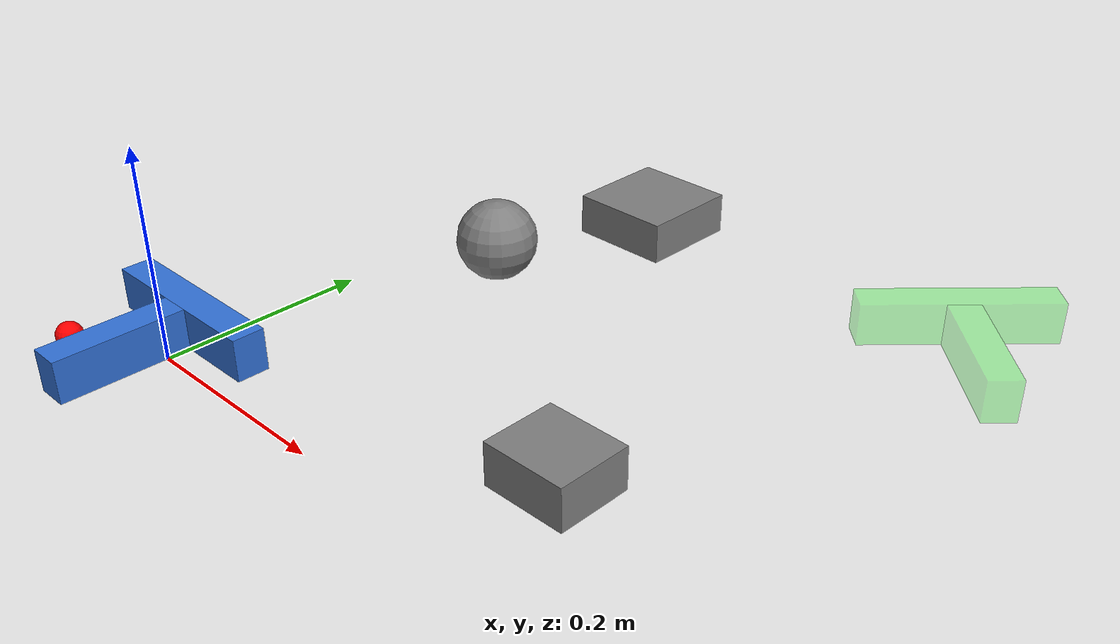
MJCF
<mujoco model="pusht_clutter">
  <option timestep="0.01" gravity="0 0 -9.81" iterations="20" ls_iterations="20" integrator="implicitfast"/>

  <default>
    <velocity ctrllimited="true" ctrlrange="-2.0 2.0" kv="100" forcerange="-200 200"/>
    <geom friction="0.5 0.005 0.0001" solref="0.004 1" solimp="0.9 0.95 0.001"/>
    <default class="goal">
      <geom conaffinity="0" contype="0" rgba="0 1 0 0.3"/>
    </default>
    <default class="object_plan">
      <geom conaffinity="0" contype="0" rgba="0 0.30 0.95 0.25"/>
    </default>
    <default class="obstacle">
      <geom conaffinity="1" contype="1" rgba="0.5 0.5 0.5 1"/>
    </default>
  </default>

  <worldbody>
    <body name="goal" mocap="true" pos="0.50 0.48 0.03" quat="0.92388 0 0 0.38268">
      <geom class="goal" name="goal_crossbar" type="box" size="0.090 0.015 0.020" pos="0.0 0.030 0.0"/>
      <geom class="goal" name="goal_stem" type="box" size="0.015 0.060 0.020" pos="0.0 -0.045 0.0"/>
    </body>

    <body name="object_plan" mocap="true" pos="0.0 0.0 0.03" quat="1 0 0 0">
      <geom class="object_plan" name="object_plan_crossbar" type="box" size="0.090 0.015 0.020" pos="0.0 0.030 0.0"/>
      <geom class="object_plan" name="object_plan_stem" type="box" size="0.015 0.060 0.020" pos="0.0 -0.045 0.0"/>
    </body>

    <body name="block" pos="0.0 0.0 0.03">
      <joint name="T_x" type="slide" axis="1 0 0" frictionloss="7.848" damping="0.0"/>
      <joint name="T_y" type="slide" axis="0 1 0" frictionloss="7.848" damping="0.0"/>
      <joint name="T_z" type="hinge" axis="0 0 1" frictionloss="0.47088" damping="0.0"/>
      <geom name="block_crossbar" type="box" size="0.090 0.015 0.020" pos="0.0 0.030 0.0" mass="1.0" rgba="0.2 0.45 0.85 1"/>
      <geom name="block_stem" type="box" size="0.015 0.060 0.020" pos="0.0 -0.045 0.0" mass="1.0" rgba="0.2 0.45 0.85 1"/>
    </body>

    <body name="pusher" pos="-0.05 -0.06 0.03">
      <joint name="root_x" type="slide" axis="1 0 0" damping="0.05"/>
      <joint name="root_y" type="slide" axis="0 1 0" damping="0.05"/>
      <geom name="pusher" type="sphere" size="0.012" mass="1.0" rgba="1 0 0 1"/>
      <site name="pusher" pos="0 0 0" rgba="0 0 0 0"/>
    </body>

    <geom class="obstacle" name="obs_circle" type="sphere" size="0.04" pos="0.08 0.32 0.03"/>
    <geom class="obstacle" name="obs_box" type="box" size="0.04 0.035 0.02" pos="0.38 0.10 0.03" euler="0 0 0.25"/>
    <geom class="obstacle" name="obs_tri" type="box" size="0.05 0.05 0.02" pos="0.15 0.47 0.03"/>
  </worldbody>

  <actuator>
    <velocity name="x_motor" joint="root_x"/>
    <velocity name="y_motor" joint="root_y"/>
  </actuator>

  <sensor>
    <framepos name="position" objtype="body" objname="block" reftype="body" refname="goal"/>
    <framequat name="orientation" objtype="body" objname="block" reftype="body" refname="goal"/>
  </sensor>
</mujoco>
